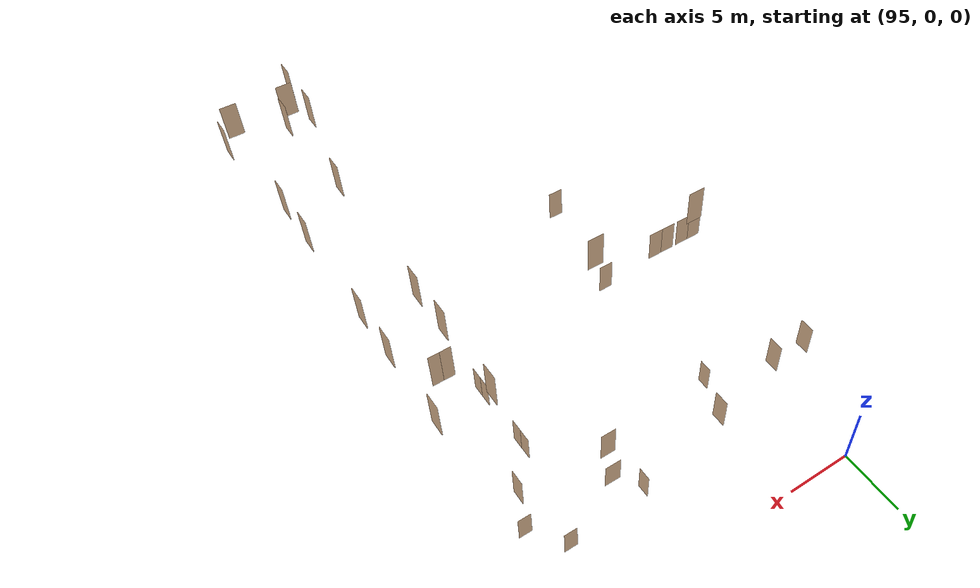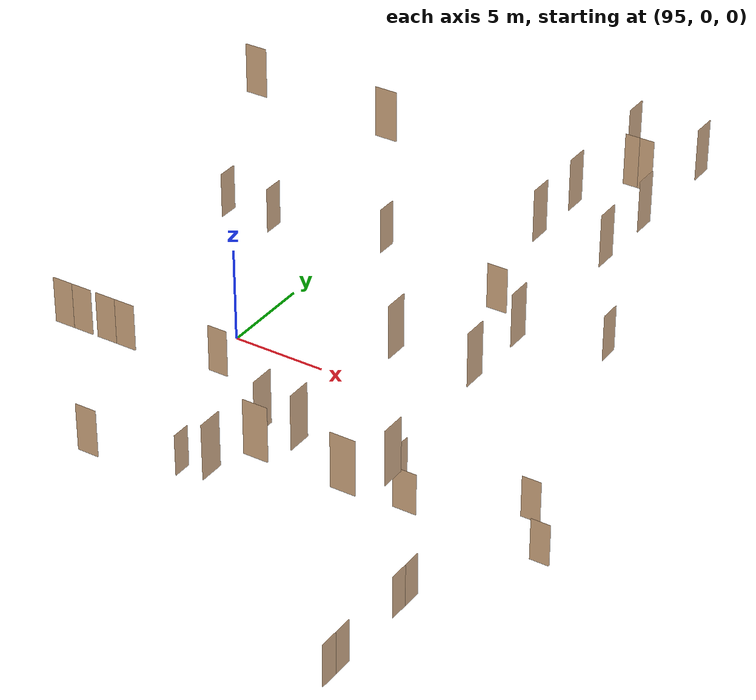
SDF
<sdf version="1.7">
 <world name="world">
  <include><uri>model://sun</uri></include>
  <model name="l1_door4">
   <pose>108.2 -5.75 0.0 0 0 1.5707963267948966</pose>
   <plugin name="door" filename="libdoor.so">
    <v_max_door>0.5</v_max_door>
    <a_max_door>0.3</a_max_door>
    <a_nom_door>0.15</a_nom_door>
    <dx_min_door>0.01</dx_min_door>
    <f_max_door>500.0</f_max_door>
    <door name="l1_door4" type="SwingDoor" left_joint_name="left_joint" right_joint_name="empty_joint"/>
   </plugin>
   <link name="left">
    <pose>0 0 1.11 0 0 0</pose>
    <visual name="left_visual">
     <geometry><box><size>0.99 0.03 2.2</size></box></geometry>
     <material><ambient>0.5 0.25 0 0.6</ambient><diffuse>0.5 0.25 0 0.6</diffuse></material>
    </visual>
    <collision name="left_collision">
     <geometry><box><size>0.99 0.03 2.2</size></box></geometry>
     <surface><contact><collide_bitmask>0x02</collide_bitmask></contact></surface>
    </collision>
    <inertial>
     <mass>50.0</mass>
     <inertia><ixx>20.17041666666667</ixx><iyy>24.250416666666673</iyy><izz>4.0875</izz></inertia>
    </inertial>
   </link>
   <joint name="left_joint" type="revolute">
    <parent>world</parent>
    <child>left</child>
    <axis><xyz>0 0 1</xyz><limit><lower>-1.57</lower><upper>0</upper></limit></axis>
    <pose>0.5 0 0 0 0 0</pose>
   </joint>
  </model>
  <model name="l1_door1">
   <pose>116.45 -7.5 0.0 0 0 3.141592653589793</pose>
   <plugin name="door" filename="libdoor.so">
    <v_max_door>0.5</v_max_door>
    <a_max_door>0.3</a_max_door>
    <a_nom_door>0.15</a_nom_door>
    <dx_min_door>0.01</dx_min_door>
    <f_max_door>500.0</f_max_door>
    <door name="l1_door1" type="SwingDoor" left_joint_name="empty_joint" right_joint_name="right_joint"/>
   </plugin>
   <link name="right">
    <pose>0 0 1.11 0 0 0</pose>
    <visual name="right_visual">
     <geometry><box><size>0.99 0.03 2.2</size></box></geometry>
     <material><ambient>0.5 0.25 0 0.6</ambient><diffuse>0.5 0.25 0 0.6</diffuse></material>
    </visual>
    <collision name="right_collision">
     <geometry><box><size>0.99 0.03 2.2</size></box></geometry>
     <surface><contact><collide_bitmask>0x02</collide_bitmask></contact></surface>
    </collision>
    <inertial>
     <mass>50.0</mass>
     <inertia><ixx>20.17041666666667</ixx><iyy>24.250416666666673</iyy><izz>4.0875</izz></inertia>
    </inertial>
   </link>
   <joint name="right_joint" type="revolute">
    <parent>world</parent>
    <child>right</child>
    <axis><xyz>0 0 1</xyz><limit><lower>0</lower><upper>1.57</upper></limit></axis>
    <pose>0.5 0 0 0 0 0</pose>
   </joint>
  </model>
  <model name="l1_door2">
   <pose>114.55000000000001 -5.0 0.0 0 0 3.141592653589793</pose>
   <plugin name="door" filename="libdoor.so">
    <v_max_door>0.5</v_max_door>
    <a_max_door>0.3</a_max_door>
    <a_nom_door>0.15</a_nom_door>
    <dx_min_door>0.01</dx_min_door>
    <f_max_door>500.0</f_max_door>
    <door name="l1_door2" type="SwingDoor" left_joint_name="empty_joint" right_joint_name="right_joint"/>
   </plugin>
   <link name="right">
    <pose>0 0 1.11 0 0 0</pose>
    <visual name="right_visual">
     <geometry><box><size>0.99 0.03 2.2</size></box></geometry>
     <material><ambient>0.5 0.25 0 0.6</ambient><diffuse>0.5 0.25 0 0.6</diffuse></material>
    </visual>
    <collision name="right_collision">
     <geometry><box><size>0.99 0.03 2.2</size></box></geometry>
     <surface><contact><collide_bitmask>0x02</collide_bitmask></contact></surface>
    </collision>
    <inertial>
     <mass>50.0</mass>
     <inertia><ixx>20.17041666666667</ixx><iyy>24.250416666666673</iyy><izz>4.0875</izz></inertia>
    </inertial>
   </link>
   <joint name="right_joint" type="revolute">
    <parent>world</parent>
    <child>right</child>
    <axis><xyz>0 0 1</xyz><limit><lower>0</lower><upper>1.57</upper></limit></axis>
    <pose>0.5 0 0 0 0 0</pose>
   </joint>
  </model>
  <model name="l1_door3">
   <pose>109.47500000000001 -7.5 0.0 0 0 0.0</pose>
   <plugin name="door" filename="libdoor.so">
    <v_max_door>0.5</v_max_door>
    <a_max_door>0.3</a_max_door>
    <a_nom_door>0.15</a_nom_door>
    <dx_min_door>0.01</dx_min_door>
    <f_max_door>500.0</f_max_door>
    <door name="l1_door3" type="SwingDoor" left_joint_name="left_joint" right_joint_name="empty_joint"/>
   </plugin>
   <link name="left">
    <pose>0 0 1.11 0 0 0</pose>
    <visual name="left_visual">
     <geometry><box><size>1.24 0.03 2.2</size></box></geometry>
     <material><ambient>0.5 0.25 0 0.6</ambient><diffuse>0.5 0.25 0 0.6</diffuse></material>
    </visual>
    <collision name="left_collision">
     <geometry><box><size>1.24 0.03 2.2</size></box></geometry>
     <surface><contact><collide_bitmask>0x02</collide_bitmask></contact></surface>
    </collision>
    <inertial>
     <mass>50.0</mass>
     <inertia><ixx>20.17041666666667</ixx><iyy>26.57333333333334</iyy><izz>6.410416666666667</izz></inertia>
    </inertial>
   </link>
   <joint name="left_joint" type="revolute">
    <parent>world</parent>
    <child>left</child>
    <axis><xyz>0 0 1</xyz><limit><lower>-1.57</lower><upper>0</upper></limit></axis>
    <pose>0.625 0 0 0 0 0</pose>
   </joint>
  </model>
  <model name="entrance_2">
   <pose>113.15 -13.25 0.0 0 0 1.5707963267948966</pose>
   <link name="left">
    <pose>-0.5 0 1.11 0 0 0</pose>
    <visual name="left_visual">
     <geometry><box><size>0.99 0.03 2.2</size></box></geometry>
     <material><ambient>0.5 0.25 0 0.6</ambient><diffuse>0.5 0.25 0 0.6</diffuse></material>
    </visual>
    <collision name="left_collision">
     <geometry><box><size>0.99 0.03 2.2</size></box></geometry>
     <surface><contact><collide_bitmask>0x02</collide_bitmask></contact></surface>
    </collision>
    <inertial>
     <mass>50.0</mass>
     <inertia><ixx>20.17041666666667</ixx><iyy>24.250416666666673</iyy><izz>4.0875</izz></inertia>
    </inertial>
   </link>
   <joint name="left_joint" type="prismatic">
    <parent>world</parent>
    <child>left</child>
    <axis><xyz>1 0 0</xyz><limit><lower>-1.0</lower><upper>0.0</upper><effort>500.0</effort></limit></axis>
   </joint>
   <link name="right">
    <pose>0.5 0 1.11 0 0 0</pose>
    <visual name="right_visual">
     <geometry><box><size>0.99 0.03 2.2</size></box></geometry>
     <material><ambient>0.5 0.25 0 0.6</ambient><diffuse>0.5 0.25 0 0.6</diffuse></material>
    </visual>
    <collision name="right_collision">
     <geometry><box><size>0.99 0.03 2.2</size></box></geometry>
     <surface><contact><collide_bitmask>0x02</collide_bitmask></contact></surface>
    </collision>
    <inertial>
     <mass>50.0</mass>
     <inertia><ixx>20.17041666666667</ixx><iyy>24.250416666666673</iyy><izz>4.0875</izz></inertia>
    </inertial>
   </link>
   <joint name="right_joint" type="prismatic">
    <parent>world</parent>
    <child>right</child>
    <axis><xyz>1 0 0</xyz><limit><lower>0.0</lower><upper>1.0</upper><effort>500.0</effort></limit></axis>
   </joint>
   <plugin name="door" filename="libdoor.so">
    <v_max_door>0.2</v_max_door>
    <a_max_door>0.2</a_max_door>
    <a_nom_door>0.08</a_nom_door>
    <dx_min_door>0.001</dx_min_door>
    <f_max_door>100.0</f_max_door>
    <door name="entrance_2" type="DoubleSlidingDoor" left_joint_name="left_joint" right_joint_name="right_joint"/>
   </plugin>
  </model>
  <model name="entrance_1">
   <pose>113.15 -18.6 0.0 0 0 1.5707963267948966</pose>
   <link name="left">
    <pose>-0.5 0 1.11 0 0 0</pose>
    <visual name="left_visual">
     <geometry><box><size>0.99 0.03 2.2</size></box></geometry>
     <material><ambient>0.5 0.25 0 0.6</ambient><diffuse>0.5 0.25 0 0.6</diffuse></material>
    </visual>
    <collision name="left_collision">
     <geometry><box><size>0.99 0.03 2.2</size></box></geometry>
     <surface><contact><collide_bitmask>0x02</collide_bitmask></contact></surface>
    </collision>
    <inertial>
     <mass>50.0</mass>
     <inertia><ixx>20.17041666666667</ixx><iyy>24.250416666666673</iyy><izz>4.0875</izz></inertia>
    </inertial>
   </link>
   <joint name="left_joint" type="prismatic">
    <parent>world</parent>
    <child>left</child>
    <axis><xyz>1 0 0</xyz><limit><lower>-1.0</lower><upper>0.0</upper><effort>500.0</effort></limit></axis>
   </joint>
   <link name="right">
    <pose>0.5 0 1.11 0 0 0</pose>
    <visual name="right_visual">
     <geometry><box><size>0.99 0.03 2.2</size></box></geometry>
     <material><ambient>0.5 0.25 0 0.6</ambient><diffuse>0.5 0.25 0 0.6</diffuse></material>
    </visual>
    <collision name="right_collision">
     <geometry><box><size>0.99 0.03 2.2</size></box></geometry>
     <surface><contact><collide_bitmask>0x02</collide_bitmask></contact></surface>
    </collision>
    <inertial>
     <mass>50.0</mass>
     <inertia><ixx>20.17041666666667</ixx><iyy>24.250416666666673</iyy><izz>4.0875</izz></inertia>
    </inertial>
   </link>
   <joint name="right_joint" type="prismatic">
    <parent>world</parent>
    <child>right</child>
    <axis><xyz>1 0 0</xyz><limit><lower>0.0</lower><upper>1.0</upper><effort>500.0</effort></limit></axis>
   </joint>
   <plugin name="door" filename="libdoor.so">
    <v_max_door>0.2</v_max_door>
    <a_max_door>0.2</a_max_door>
    <a_nom_door>0.08</a_nom_door>
    <dx_min_door>0.001</dx_min_door>
    <f_max_door>100.0</f_max_door>
    <door name="entrance_1" type="DoubleSlidingDoor" left_joint_name="left_joint" right_joint_name="right_joint"/>
   </plugin>
  </model>
  <model name="l1_door5">
   <pose>99.30000000000001 -10.4 0.0 0 0 1.5707963267948966</pose>
   <plugin name="door" filename="libdoor.so">
    <v_max_door>0.5</v_max_door>
    <a_max_door>0.3</a_max_door>
    <a_nom_door>0.15</a_nom_door>
    <dx_min_door>0.01</dx_min_door>
    <f_max_door>500.0</f_max_door>
    <door name="l1_door5" type="SwingDoor" left_joint_name="left_joint" right_joint_name="empty_joint"/>
   </plugin>
   <link name="left">
    <pose>0 0 1.11 0 0 0</pose>
    <visual name="left_visual">
     <geometry><box><size>0.99 0.03 2.2</size></box></geometry>
     <material><ambient>0.5 0.25 0 0.6</ambient><diffuse>0.5 0.25 0 0.6</diffuse></material>
    </visual>
    <collision name="left_collision">
     <geometry><box><size>0.99 0.03 2.2</size></box></geometry>
     <surface><contact><collide_bitmask>0x02</collide_bitmask></contact></surface>
    </collision>
    <inertial>
     <mass>50.0</mass>
     <inertia><ixx>20.17041666666667</ixx><iyy>24.250416666666673</iyy><izz>4.0875</izz></inertia>
    </inertial>
   </link>
   <joint name="left_joint" type="revolute">
    <parent>world</parent>
    <child>left</child>
    <axis><xyz>0 0 1</xyz><limit><lower>-1.57</lower><upper>0</upper></limit></axis>
    <pose>0.5 0 0 0 0 0</pose>
   </joint>
  </model>
  <model name="conf1_door0">
   <pose>97.8 -15.5 10.0 0 0 3.141592653589793</pose>
   <link name="right">
    <pose>-0.5 0 1.11 0 0 0</pose>
    <visual name="right_visual">
     <geometry><box><size>0.99 0.03 2.2</size></box></geometry>
     <material><ambient>0.5 0.25 0 0.6</ambient><diffuse>0.5 0.25 0 0.6</diffuse></material>
    </visual>
    <collision name="right_collision">
     <geometry><box><size>0.99 0.03 2.2</size></box></geometry>
     <surface><contact><collide_bitmask>0x02</collide_bitmask></contact></surface>
    </collision>
    <inertial>
     <mass>50.0</mass>
     <inertia><ixx>20.17041666666667</ixx><iyy>24.250416666666673</iyy><izz>4.0875</izz></inertia>
    </inertial>
   </link>
   <joint name="right_joint" type="revolute">
    <parent>world</parent>
    <child>right</child>
    <axis><xyz>0 0 1</xyz><limit><lower>0</lower><upper>1.57</upper></limit></axis>
    <pose>-0.5 0 0 0 0 0</pose>
   </joint>
   <link name="left">
    <pose>0.5 0 1.11 0 0 0</pose>
    <visual name="left_visual">
     <geometry><box><size>0.99 0.03 2.2</size></box></geometry>
     <material><ambient>0.5 0.25 0 0.6</ambient><diffuse>0.5 0.25 0 0.6</diffuse></material>
    </visual>
    <collision name="left_collision">
     <geometry><box><size>0.99 0.03 2.2</size></box></geometry>
     <surface><contact><collide_bitmask>0x02</collide_bitmask></contact></surface>
    </collision>
    <inertial>
     <mass>50.0</mass>
     <inertia><ixx>20.17041666666667</ixx><iyy>24.250416666666673</iyy><izz>4.0875</izz></inertia>
    </inertial>
   </link>
   <joint name="left_joint" type="revolute">
    <parent>world</parent>
    <child>left</child>
    <axis><xyz>0 0 1</xyz><limit><lower>-1.57</lower><upper>0</upper></limit></axis>
    <pose>0.5 0 0 0 0 0</pose>
   </joint>
   <plugin name="door" filename="libdoor.so">
    <v_max_door>0.5</v_max_door>
    <a_max_door>0.3</a_max_door>
    <a_nom_door>0.15</a_nom_door>
    <dx_min_door>0.01</dx_min_door>
    <f_max_door>500.0</f_max_door>
    <door name="conf1_door0" type="DoubleSwingDoor" left_joint_name="left_joint" right_joint_name="right_joint"/>
   </plugin>
  </model>
  <model name="conf1_door1">
   <pose>100.05 -15.5 10.0 0 0 3.141592653589793</pose>
   <link name="right">
    <pose>-0.5 0 1.11 0 0 0</pose>
    <visual name="right_visual">
     <geometry><box><size>0.99 0.03 2.2</size></box></geometry>
     <material><ambient>0.5 0.25 0 0.6</ambient><diffuse>0.5 0.25 0 0.6</diffuse></material>
    </visual>
    <collision name="right_collision">
     <geometry><box><size>0.99 0.03 2.2</size></box></geometry>
     <surface><contact><collide_bitmask>0x02</collide_bitmask></contact></surface>
    </collision>
    <inertial>
     <mass>50.0</mass>
     <inertia><ixx>20.17041666666667</ixx><iyy>24.250416666666673</iyy><izz>4.0875</izz></inertia>
    </inertial>
   </link>
   <joint name="right_joint" type="revolute">
    <parent>world</parent>
    <child>right</child>
    <axis><xyz>0 0 1</xyz><limit><lower>0</lower><upper>1.57</upper></limit></axis>
    <pose>-0.5 0 0 0 0 0</pose>
   </joint>
   <link name="left">
    <pose>0.5 0 1.11 0 0 0</pose>
    <visual name="left_visual">
     <geometry><box><size>0.99 0.03 2.2</size></box></geometry>
     <material><ambient>0.5 0.25 0 0.6</ambient><diffuse>0.5 0.25 0 0.6</diffuse></material>
    </visual>
    <collision name="left_collision">
     <geometry><box><size>0.99 0.03 2.2</size></box></geometry>
     <surface><contact><collide_bitmask>0x02</collide_bitmask></contact></surface>
    </collision>
    <inertial>
     <mass>50.0</mass>
     <inertia><ixx>20.17041666666667</ixx><iyy>24.250416666666673</iyy><izz>4.0875</izz></inertia>
    </inertial>
   </link>
   <joint name="left_joint" type="revolute">
    <parent>world</parent>
    <child>left</child>
    <axis><xyz>0 0 1</xyz><limit><lower>-1.57</lower><upper>0</upper></limit></axis>
    <pose>0.5 0 0 0 0 0</pose>
   </joint>
   <plugin name="door" filename="libdoor.so">
    <v_max_door>0.5</v_max_door>
    <a_max_door>0.3</a_max_door>
    <a_nom_door>0.15</a_nom_door>
    <dx_min_door>0.01</dx_min_door>
    <f_max_door>500.0</f_max_door>
    <door name="conf1_door1" type="DoubleSwingDoor" left_joint_name="left_joint" right_joint_name="right_joint"/>
   </plugin>
  </model>
  <model name="conf1_back0">
   <pose>97.7 -4.0 10.0 0 0 -1.5707963267948966</pose>
   <plugin name="door" filename="libdoor.so">
    <v_max_door>0.5</v_max_door>
    <a_max_door>0.3</a_max_door>
    <a_nom_door>0.15</a_nom_door>
    <dx_min_door>0.01</dx_min_door>
    <f_max_door>500.0</f_max_door>
    <door name="conf1_back0" type="SwingDoor" left_joint_name="empty_joint" right_joint_name="right_joint"/>
   </plugin>
   <link name="right">
    <pose>0 0 1.11 0 0 0</pose>
    <visual name="right_visual">
     <geometry><box><size>0.99 0.03 2.2</size></box></geometry>
     <material><ambient>0.5 0.25 0 0.6</ambient><diffuse>0.5 0.25 0 0.6</diffuse></material>
    </visual>
    <collision name="right_collision">
     <geometry><box><size>0.99 0.03 2.2</size></box></geometry>
     <surface><contact><collide_bitmask>0x02</collide_bitmask></contact></surface>
    </collision>
    <inertial>
     <mass>50.0</mass>
     <inertia><ixx>20.17041666666667</ixx><iyy>24.250416666666673</iyy><izz>4.0875</izz></inertia>
    </inertial>
   </link>
   <joint name="right_joint" type="revolute">
    <parent>world</parent>
    <child>right</child>
    <axis><xyz>0 0 1</xyz><limit><lower>0</lower><upper>1.57</upper></limit></axis>
    <pose>0.5 0 0 0 0 0</pose>
   </joint>
  </model>
  <model name="conf1_back1">
   <pose>100.2 -4.0 10.0 0 0 -1.5707963267948966</pose>
   <plugin name="door" filename="libdoor.so">
    <v_max_door>0.5</v_max_door>
    <a_max_door>0.3</a_max_door>
    <a_nom_door>0.15</a_nom_door>
    <dx_min_door>0.01</dx_min_door>
    <f_max_door>500.0</f_max_door>
    <door name="conf1_back1" type="SwingDoor" left_joint_name="empty_joint" right_joint_name="right_joint"/>
   </plugin>
   <link name="right">
    <pose>0 0 1.11 0 0 0</pose>
    <visual name="right_visual">
     <geometry><box><size>0.99 0.03 2.2</size></box></geometry>
     <material><ambient>0.5 0.25 0 0.6</ambient><diffuse>0.5 0.25 0 0.6</diffuse></material>
    </visual>
    <collision name="right_collision">
     <geometry><box><size>0.99 0.03 2.2</size></box></geometry>
     <surface><contact><collide_bitmask>0x02</collide_bitmask></contact></surface>
    </collision>
    <inertial>
     <mass>50.0</mass>
     <inertia><ixx>20.17041666666667</ixx><iyy>24.250416666666673</iyy><izz>4.0875</izz></inertia>
    </inertial>
   </link>
   <joint name="right_joint" type="revolute">
    <parent>world</parent>
    <child>right</child>
    <axis><xyz>0 0 1</xyz><limit><lower>0</lower><upper>1.57</upper></limit></axis>
    <pose>0.5 0 0 0 0 0</pose>
   </joint>
  </model>
  <model name="conf_door9">
   <pose>105.44987499999999 -2.75 10.0 0 0 1.5705463268000968</pose>
   <plugin name="door" filename="libdoor.so">
    <v_max_door>0.5</v_max_door>
    <a_max_door>0.3</a_max_door>
    <a_nom_door>0.15</a_nom_door>
    <dx_min_door>0.01</dx_min_door>
    <f_max_door>500.0</f_max_door>
    <door name="conf_door9" type="SwingDoor" left_joint_name="empty_joint" right_joint_name="right_joint"/>
   </plugin>
   <link name="right">
    <pose>0 0 1.11 0 0 0</pose>
    <visual name="right_visual">
     <geometry><box><size>0.9900000312499995 0.03 2.2</size></box></geometry>
     <material><ambient>0.5 0.25 0 0.6</ambient><diffuse>0.5 0.25 0 0.6</diffuse></material>
    </visual>
    <collision name="right_collision">
     <geometry><box><size>0.9900000312499995 0.03 2.2</size></box></geometry>
     <surface><contact><collide_bitmask>0x02</collide_bitmask></contact></surface>
    </collision>
    <inertial>
     <mass>50.0</mass>
     <inertia><ixx>20.17041666666667</ixx><iyy>24.25041692447917</iyy><izz>4.0875002578125</izz></inertia>
    </inertial>
   </link>
   <joint name="right_joint" type="revolute">
    <parent>world</parent>
    <child>right</child>
    <axis><xyz>0 0 1</xyz><limit><lower>0</lower><upper>1.57</upper></limit></axis>
    <pose>0.5000000156249997 0 0 0 0 0</pose>
   </joint>
  </model>
  <model name="conf_door8">
   <pose>104.975 -15.0 10.0 0 0 3.141592653589793</pose>
   <plugin name="door" filename="libdoor.so">
    <v_max_door>0.5</v_max_door>
    <a_max_door>0.3</a_max_door>
    <a_nom_door>0.15</a_nom_door>
    <dx_min_door>0.01</dx_min_door>
    <f_max_door>500.0</f_max_door>
    <door name="conf_door8" type="SwingDoor" left_joint_name="empty_joint" right_joint_name="right_joint"/>
   </plugin>
   <link name="right">
    <pose>0 0 1.11 0 0 0</pose>
    <visual name="right_visual">
     <geometry><box><size>0.9400000000000028 0.03 2.2</size></box></geometry>
     <material><ambient>0.5 0.25 0 0.6</ambient><diffuse>0.5 0.25 0 0.6</diffuse></material>
    </visual>
    <collision name="right_collision">
     <geometry><box><size>0.9400000000000028 0.03 2.2</size></box></geometry>
     <surface><contact><collide_bitmask>0x02</collide_bitmask></contact></surface>
    </collision>
    <inertial>
     <mass>50.0</mass>
     <inertia><ixx>20.17041666666667</ixx><iyy>23.84833333333336</iyy><izz>3.6854166666666894</izz></inertia>
    </inertial>
   </link>
   <joint name="right_joint" type="revolute">
    <parent>world</parent>
    <child>right</child>
    <axis><xyz>0 0 1</xyz><limit><lower>0</lower><upper>1.57</upper></limit></axis>
    <pose>0.4750000000000014 0 0 0 0 0</pose>
   </joint>
  </model>
  <model name="conf_meeting1_door1">
   <pose>103.95 -22.5 10.0 0 0 3.141592653589793</pose>
   <plugin name="door" filename="libdoor.so">
    <v_max_door>0.5</v_max_door>
    <a_max_door>0.3</a_max_door>
    <a_nom_door>0.15</a_nom_door>
    <dx_min_door>0.01</dx_min_door>
    <f_max_door>500.0</f_max_door>
    <door name="conf_meeting1_door1" type="SwingDoor" left_joint_name="empty_joint" right_joint_name="right_joint"/>
   </plugin>
   <link name="right">
    <pose>0 0 1.11 0 0 0</pose>
    <visual name="right_visual">
     <geometry><box><size>0.99 0.03 2.2</size></box></geometry>
     <material><ambient>0.5 0.25 0 0.6</ambient><diffuse>0.5 0.25 0 0.6</diffuse></material>
    </visual>
    <collision name="right_collision">
     <geometry><box><size>0.99 0.03 2.2</size></box></geometry>
     <surface><contact><collide_bitmask>0x02</collide_bitmask></contact></surface>
    </collision>
    <inertial>
     <mass>50.0</mass>
     <inertia><ixx>20.17041666666667</ixx><iyy>24.250416666666673</iyy><izz>4.0875</izz></inertia>
    </inertial>
   </link>
   <joint name="right_joint" type="revolute">
    <parent>world</parent>
    <child>right</child>
    <axis><xyz>0 0 1</xyz><limit><lower>0</lower><upper>1.57</upper></limit></axis>
    <pose>0.5 0 0 0 0 0</pose>
   </joint>
  </model>
  <model name="conf_door10">
   <pose>112.2 -4.5 10.0 0 0 0.0</pose>
   <plugin name="door" filename="libdoor.so">
    <v_max_door>0.5</v_max_door>
    <a_max_door>0.3</a_max_door>
    <a_nom_door>0.15</a_nom_door>
    <dx_min_door>0.01</dx_min_door>
    <f_max_door>500.0</f_max_door>
    <door name="conf_door10" type="SwingDoor" left_joint_name="left_joint" right_joint_name="empty_joint"/>
   </plugin>
   <link name="left">
    <pose>0 0 1.11 0 0 0</pose>
    <visual name="left_visual">
     <geometry><box><size>0.99 0.03 2.2</size></box></geometry>
     <material><ambient>0.5 0.25 0 0.6</ambient><diffuse>0.5 0.25 0 0.6</diffuse></material>
    </visual>
    <collision name="left_collision">
     <geometry><box><size>0.99 0.03 2.2</size></box></geometry>
     <surface><contact><collide_bitmask>0x02</collide_bitmask></contact></surface>
    </collision>
    <inertial>
     <mass>50.0</mass>
     <inertia><ixx>20.17041666666667</ixx><iyy>24.250416666666673</iyy><izz>4.0875</izz></inertia>
    </inertial>
   </link>
   <joint name="left_joint" type="revolute">
    <parent>world</parent>
    <child>left</child>
    <axis><xyz>0 0 1</xyz><limit><lower>-1.57</lower><upper>0</upper></limit></axis>
    <pose>0.5 0 0 0 0 0</pose>
   </joint>
  </model>
  <model name="conf_door11">
   <pose>117.95 -5.0 10.0 0 0 -1.5707963267948966</pose>
   <plugin name="door" filename="libdoor.so">
    <v_max_door>0.5</v_max_door>
    <a_max_door>0.3</a_max_door>
    <a_nom_door>0.15</a_nom_door>
    <dx_min_door>0.01</dx_min_door>
    <f_max_door>500.0</f_max_door>
    <door name="conf_door11" type="SwingDoor" left_joint_name="left_joint" right_joint_name="empty_joint"/>
   </plugin>
   <link name="left">
    <pose>0 0 1.11 0 0 0</pose>
    <visual name="left_visual">
     <geometry><box><size>0.99 0.03 2.2</size></box></geometry>
     <material><ambient>0.5 0.25 0 0.6</ambient><diffuse>0.5 0.25 0 0.6</diffuse></material>
    </visual>
    <collision name="left_collision">
     <geometry><box><size>0.99 0.03 2.2</size></box></geometry>
     <surface><contact><collide_bitmask>0x02</collide_bitmask></contact></surface>
    </collision>
    <inertial>
     <mass>50.0</mass>
     <inertia><ixx>20.17041666666667</ixx><iyy>24.250416666666673</iyy><izz>4.0875</izz></inertia>
    </inertial>
   </link>
   <joint name="left_joint" type="revolute">
    <parent>world</parent>
    <child>left</child>
    <axis><xyz>0 0 1</xyz><limit><lower>-1.57</lower><upper>0</upper></limit></axis>
    <pose>0.5 0 0 0 0 0</pose>
   </joint>
  </model>
  <model name="room28_door">
   <pose>103.2 -9.25 20.0 0 0 3.141592653589793</pose>
   <plugin name="door" filename="libdoor.so">
    <v_max_door>0.5</v_max_door>
    <a_max_door>0.3</a_max_door>
    <a_nom_door>0.15</a_nom_door>
    <dx_min_door>0.01</dx_min_door>
    <f_max_door>500.0</f_max_door>
    <door name="room28_door" type="SwingDoor" left_joint_name="left_joint" right_joint_name="empty_joint"/>
   </plugin>
   <link name="left">
    <pose>0 0 1.11 0 0 0</pose>
    <visual name="left_visual">
     <geometry><box><size>0.99 0.03 2.2</size></box></geometry>
     <material><ambient>0.5 0.25 0 0.6</ambient><diffuse>0.5 0.25 0 0.6</diffuse></material>
    </visual>
    <collision name="left_collision">
     <geometry><box><size>0.99 0.03 2.2</size></box></geometry>
     <surface><contact><collide_bitmask>0x02</collide_bitmask></contact></surface>
    </collision>
    <inertial>
     <mass>50.0</mass>
     <inertia><ixx>20.17041666666667</ixx><iyy>24.250416666666673</iyy><izz>4.0875</izz></inertia>
    </inertial>
   </link>
   <joint name="left_joint" type="revolute">
    <parent>world</parent>
    <child>left</child>
    <axis><xyz>0 0 1</xyz><limit><lower>-1.57</lower><upper>0</upper></limit></axis>
    <pose>0.5 0 0 0 0 0</pose>
   </joint>
  </model>
  <model name="room29_door">
   <pose>109.7 -9.5 20.0 0 0 0.0</pose>
   <plugin name="door" filename="libdoor.so">
    <v_max_door>0.5</v_max_door>
    <a_max_door>0.3</a_max_door>
    <a_nom_door>0.15</a_nom_door>
    <dx_min_door>0.01</dx_min_door>
    <f_max_door>500.0</f_max_door>
    <door name="room29_door" type="SwingDoor" left_joint_name="empty_joint" right_joint_name="right_joint"/>
   </plugin>
   <link name="right">
    <pose>0 0 1.11 0 0 0</pose>
    <visual name="right_visual">
     <geometry><box><size>0.99 0.03 2.2</size></box></geometry>
     <material><ambient>0.5 0.25 0 0.6</ambient><diffuse>0.5 0.25 0 0.6</diffuse></material>
    </visual>
    <collision name="right_collision">
     <geometry><box><size>0.99 0.03 2.2</size></box></geometry>
     <surface><contact><collide_bitmask>0x02</collide_bitmask></contact></surface>
    </collision>
    <inertial>
     <mass>50.0</mass>
     <inertia><ixx>20.17041666666667</ixx><iyy>24.250416666666673</iyy><izz>4.0875</izz></inertia>
    </inertial>
   </link>
   <joint name="right_joint" type="revolute">
    <parent>world</parent>
    <child>right</child>
    <axis><xyz>0 0 1</xyz><limit><lower>0</lower><upper>1.57</upper></limit></axis>
    <pose>0.5 0 0 0 0 0</pose>
   </joint>
  </model>
  <model name="stair2_door">
   <pose>118.7 -10.0 20.0 0 0 1.5707963267948966</pose>
   <plugin name="door" filename="libdoor.so">
    <v_max_door>0.5</v_max_door>
    <a_max_door>0.3</a_max_door>
    <a_nom_door>0.15</a_nom_door>
    <dx_min_door>0.01</dx_min_door>
    <f_max_door>500.0</f_max_door>
    <door name="stair2_door" type="SwingDoor" left_joint_name="left_joint" right_joint_name="empty_joint"/>
   </plugin>
   <link name="left">
    <pose>0 0 1.11 0 0 0</pose>
    <visual name="left_visual">
     <geometry><box><size>0.99 0.03 2.2</size></box></geometry>
     <material><ambient>0.5 0.25 0 0.6</ambient><diffuse>0.5 0.25 0 0.6</diffuse></material>
    </visual>
    <collision name="left_collision">
     <geometry><box><size>0.99 0.03 2.2</size></box></geometry>
     <surface><contact><collide_bitmask>0x02</collide_bitmask></contact></surface>
    </collision>
    <inertial>
     <mass>50.0</mass>
     <inertia><ixx>20.17041666666667</ixx><iyy>24.250416666666673</iyy><izz>4.0875</izz></inertia>
    </inertial>
   </link>
   <joint name="left_joint" type="revolute">
    <parent>world</parent>
    <child>left</child>
    <axis><xyz>0 0 1</xyz><limit><lower>-1.57</lower><upper>0</upper></limit></axis>
    <pose>0.5 0 0 0 0 0</pose>
   </joint>
  </model>
  <model name="door9">
   <pose>118.7 -12.75 20.0 0 0 -1.5707963267948966</pose>
   <plugin name="door" filename="libdoor.so">
    <v_max_door>0.5</v_max_door>
    <a_max_door>0.3</a_max_door>
    <a_nom_door>0.15</a_nom_door>
    <dx_min_door>0.01</dx_min_door>
    <f_max_door>500.0</f_max_door>
    <door name="door9" type="SwingDoor" left_joint_name="left_joint" right_joint_name="empty_joint"/>
   </plugin>
   <link name="left">
    <pose>0 0 1.11 0 0 0</pose>
    <visual name="left_visual">
     <geometry><box><size>0.99 0.03 2.2</size></box></geometry>
     <material><ambient>0.5 0.25 0 0.6</ambient><diffuse>0.5 0.25 0 0.6</diffuse></material>
    </visual>
    <collision name="left_collision">
     <geometry><box><size>0.99 0.03 2.2</size></box></geometry>
     <surface><contact><collide_bitmask>0x02</collide_bitmask></contact></surface>
    </collision>
    <inertial>
     <mass>50.0</mass>
     <inertia><ixx>20.17041666666667</ixx><iyy>24.250416666666673</iyy><izz>4.0875</izz></inertia>
    </inertial>
   </link>
   <joint name="left_joint" type="revolute">
    <parent>world</parent>
    <child>left</child>
    <axis><xyz>0 0 1</xyz><limit><lower>-1.57</lower><upper>0</upper></limit></axis>
    <pose>0.5 0 0 0 0 0</pose>
   </joint>
  </model>
  <model name="room30_door">
   <pose>118.7 -5.25 20.0 0 0 -1.5707963267948966</pose>
   <plugin name="door" filename="libdoor.so">
    <v_max_door>0.5</v_max_door>
    <a_max_door>0.3</a_max_door>
    <a_nom_door>0.15</a_nom_door>
    <dx_min_door>0.01</dx_min_door>
    <f_max_door>500.0</f_max_door>
    <door name="room30_door" type="SwingDoor" left_joint_name="empty_joint" right_joint_name="right_joint"/>
   </plugin>
   <link name="right">
    <pose>0 0 1.11 0 0 0</pose>
    <visual name="right_visual">
     <geometry><box><size>0.99 0.03 2.2</size></box></geometry>
     <material><ambient>0.5 0.25 0 0.6</ambient><diffuse>0.5 0.25 0 0.6</diffuse></material>
    </visual>
    <collision name="right_collision">
     <geometry><box><size>0.99 0.03 2.2</size></box></geometry>
     <surface><contact><collide_bitmask>0x02</collide_bitmask></contact></surface>
    </collision>
    <inertial>
     <mass>50.0</mass>
     <inertia><ixx>20.17041666666667</ixx><iyy>24.250416666666673</iyy><izz>4.0875</izz></inertia>
    </inertial>
   </link>
   <joint name="right_joint" type="revolute">
    <parent>world</parent>
    <child>right</child>
    <axis><xyz>0 0 1</xyz><limit><lower>0</lower><upper>1.57</upper></limit></axis>
    <pose>0.5 0 0 0 0 0</pose>
   </joint>
  </model>
  <model name="room31_door">
   <pose>121.7 -5.25 20.0 0 0 -1.5707963267948966</pose>
   <plugin name="door" filename="libdoor.so">
    <v_max_door>0.5</v_max_door>
    <a_max_door>0.3</a_max_door>
    <a_nom_door>0.15</a_nom_door>
    <dx_min_door>0.01</dx_min_door>
    <f_max_door>500.0</f_max_door>
    <door name="room31_door" type="SwingDoor" left_joint_name="left_joint" right_joint_name="empty_joint"/>
   </plugin>
   <link name="left">
    <pose>0 0 1.11 0 0 0</pose>
    <visual name="left_visual">
     <geometry><box><size>0.99 0.03 2.2</size></box></geometry>
     <material><ambient>0.5 0.25 0 0.6</ambient><diffuse>0.5 0.25 0 0.6</diffuse></material>
    </visual>
    <collision name="left_collision">
     <geometry><box><size>0.99 0.03 2.2</size></box></geometry>
     <surface><contact><collide_bitmask>0x02</collide_bitmask></contact></surface>
    </collision>
    <inertial>
     <mass>50.0</mass>
     <inertia><ixx>20.17041666666667</ixx><iyy>24.250416666666673</iyy><izz>4.0875</izz></inertia>
    </inertial>
   </link>
   <joint name="left_joint" type="revolute">
    <parent>world</parent>
    <child>left</child>
    <axis><xyz>0 0 1</xyz><limit><lower>-1.57</lower><upper>0</upper></limit></axis>
    <pose>0.5 0 0 0 0 0</pose>
   </joint>
  </model>
  <model name="door8">
   <pose>120.075 -7.5 20.0 0 0 3.141592653589793</pose>
   <link name="right">
    <pose>0.3125 0 1.11 0 0 0</pose>
    <visual name="right_visual">
     <geometry><box><size>0.615 0.03 2.2</size></box></geometry>
     <material><ambient>0.5 0.25 0 0.6</ambient><diffuse>0.5 0.25 0 0.6</diffuse></material>
    </visual>
    <collision name="right_collision">
     <geometry><box><size>0.615 0.03 2.2</size></box></geometry>
     <surface><contact><collide_bitmask>0x02</collide_bitmask></contact></surface>
    </collision>
    <inertial>
     <mass>50.0</mass>
     <inertia><ixx>20.17041666666667</ixx><iyy>21.74260416666667</iyy><izz>1.5796875000000001</izz></inertia>
    </inertial>
   </link>
   <joint name="right_joint" type="revolute">
    <parent>world</parent>
    <child>right</child>
    <axis><xyz>0 0 1</xyz><limit><lower>0</lower><upper>1.57</upper></limit></axis>
    <pose>0.3125 0 0 0 0 0</pose>
   </joint>
   <link name="left">
    <pose>-0.3125 0 1.11 0 0 0</pose>
    <visual name="left_visual">
     <geometry><box><size>0.615 0.03 2.2</size></box></geometry>
     <material><ambient>0.5 0.25 0 0.6</ambient><diffuse>0.5 0.25 0 0.6</diffuse></material>
    </visual>
    <collision name="left_collision">
     <geometry><box><size>0.615 0.03 2.2</size></box></geometry>
     <surface><contact><collide_bitmask>0x02</collide_bitmask></contact></surface>
    </collision>
    <inertial>
     <mass>50.0</mass>
     <inertia><ixx>20.17041666666667</ixx><iyy>21.74260416666667</iyy><izz>1.5796875000000001</izz></inertia>
    </inertial>
   </link>
   <joint name="left_joint" type="revolute">
    <parent>world</parent>
    <child>left</child>
    <axis><xyz>0 0 1</xyz><limit><lower>-1.57</lower><upper>0</upper></limit></axis>
    <pose>-0.3125 0 0 0 0 0</pose>
   </joint>
   <plugin name="door" filename="libdoor.so">
    <v_max_door>0.5</v_max_door>
    <a_max_door>0.3</a_max_door>
    <a_nom_door>0.15</a_nom_door>
    <dx_min_door>0.01</dx_min_door>
    <f_max_door>500.0</f_max_door>
    <door name="door8" type="DoubleSwingDoor" left_joint_name="left_joint" right_joint_name="right_joint"/>
   </plugin>
  </model>
  <model name="room32_door">
   <pose>121.7 -10.0 20.0 0 0 -1.5707963267948966</pose>
   <plugin name="door" filename="libdoor.so">
    <v_max_door>0.5</v_max_door>
    <a_max_door>0.3</a_max_door>
    <a_nom_door>0.15</a_nom_door>
    <dx_min_door>0.01</dx_min_door>
    <f_max_door>500.0</f_max_door>
    <door name="room32_door" type="SwingDoor" left_joint_name="left_joint" right_joint_name="empty_joint"/>
   </plugin>
   <link name="left">
    <pose>0 0 1.11 0 0 0</pose>
    <visual name="left_visual">
     <geometry><box><size>0.99 0.03 2.2</size></box></geometry>
     <material><ambient>0.5 0.25 0 0.6</ambient><diffuse>0.5 0.25 0 0.6</diffuse></material>
    </visual>
    <collision name="left_collision">
     <geometry><box><size>0.99 0.03 2.2</size></box></geometry>
     <surface><contact><collide_bitmask>0x02</collide_bitmask></contact></surface>
    </collision>
    <inertial>
     <mass>50.0</mass>
     <inertia><ixx>20.17041666666667</ixx><iyy>24.250416666666673</iyy><izz>4.0875</izz></inertia>
    </inertial>
   </link>
   <joint name="left_joint" type="revolute">
    <parent>world</parent>
    <child>left</child>
    <axis><xyz>0 0 1</xyz><limit><lower>-1.57</lower><upper>0</upper></limit></axis>
    <pose>0.5 0 0 0 0 0</pose>
   </joint>
  </model>
  <model name="room33_door">
   <pose>121.7 -13.0 20.0 0 0 1.5707963267948966</pose>
   <plugin name="door" filename="libdoor.so">
    <v_max_door>0.5</v_max_door>
    <a_max_door>0.3</a_max_door>
    <a_nom_door>0.15</a_nom_door>
    <dx_min_door>0.01</dx_min_door>
    <f_max_door>500.0</f_max_door>
    <door name="room33_door" type="SwingDoor" left_joint_name="empty_joint" right_joint_name="right_joint"/>
   </plugin>
   <link name="right">
    <pose>0 0 1.11 0 0 0</pose>
    <visual name="right_visual">
     <geometry><box><size>0.99 0.03 2.2</size></box></geometry>
     <material><ambient>0.5 0.25 0 0.6</ambient><diffuse>0.5 0.25 0 0.6</diffuse></material>
    </visual>
    <collision name="right_collision">
     <geometry><box><size>0.99 0.03 2.2</size></box></geometry>
     <surface><contact><collide_bitmask>0x02</collide_bitmask></contact></surface>
    </collision>
    <inertial>
     <mass>50.0</mass>
     <inertia><ixx>20.17041666666667</ixx><iyy>24.250416666666673</iyy><izz>4.0875</izz></inertia>
    </inertial>
   </link>
   <joint name="right_joint" type="revolute">
    <parent>world</parent>
    <child>right</child>
    <axis><xyz>0 0 1</xyz><limit><lower>0</lower><upper>1.57</upper></limit></axis>
    <pose>0.5 0 0 0 0 0</pose>
   </joint>
  </model>
  <model name="room34_door">
   <pose>121.7 -19.5 20.0 0 0 -1.5707963267948966</pose>
   <plugin name="door" filename="libdoor.so">
    <v_max_door>0.5</v_max_door>
    <a_max_door>0.3</a_max_door>
    <a_nom_door>0.15</a_nom_door>
    <dx_min_door>0.01</dx_min_door>
    <f_max_door>500.0</f_max_door>
    <door name="room34_door" type="SwingDoor" left_joint_name="left_joint" right_joint_name="empty_joint"/>
   </plugin>
   <link name="left">
    <pose>0 0 1.11 0 0 0</pose>
    <visual name="left_visual">
     <geometry><box><size>0.99 0.03 2.2</size></box></geometry>
     <material><ambient>0.5 0.25 0 0.6</ambient><diffuse>0.5 0.25 0 0.6</diffuse></material>
    </visual>
    <collision name="left_collision">
     <geometry><box><size>0.99 0.03 2.2</size></box></geometry>
     <surface><contact><collide_bitmask>0x02</collide_bitmask></contact></surface>
    </collision>
    <inertial>
     <mass>50.0</mass>
     <inertia><ixx>20.17041666666667</ixx><iyy>24.250416666666673</iyy><izz>4.0875</izz></inertia>
    </inertial>
   </link>
   <joint name="left_joint" type="revolute">
    <parent>world</parent>
    <child>left</child>
    <axis><xyz>0 0 1</xyz><limit><lower>-1.57</lower><upper>0</upper></limit></axis>
    <pose>0.5 0 0 0 0 0</pose>
   </joint>
  </model>
  <model name="room35_door">
   <pose>121.7 -22.5 20.0 0 0 1.5707963267948966</pose>
   <plugin name="door" filename="libdoor.so">
    <v_max_door>0.5</v_max_door>
    <a_max_door>0.3</a_max_door>
    <a_nom_door>0.15</a_nom_door>
    <dx_min_door>0.01</dx_min_door>
    <f_max_door>500.0</f_max_door>
    <door name="room35_door" type="SwingDoor" left_joint_name="empty_joint" right_joint_name="right_joint"/>
   </plugin>
   <link name="right">
    <pose>0 0 1.11 0 0 0</pose>
    <visual name="right_visual">
     <geometry><box><size>0.99 0.03 2.2</size></box></geometry>
     <material><ambient>0.5 0.25 0 0.6</ambient><diffuse>0.5 0.25 0 0.6</diffuse></material>
    </visual>
    <collision name="right_collision">
     <geometry><box><size>0.99 0.03 2.2</size></box></geometry>
     <surface><contact><collide_bitmask>0x02</collide_bitmask></contact></surface>
    </collision>
    <inertial>
     <mass>50.0</mass>
     <inertia><ixx>20.17041666666667</ixx><iyy>24.250416666666673</iyy><izz>4.0875</izz></inertia>
    </inertial>
   </link>
   <joint name="right_joint" type="revolute">
    <parent>world</parent>
    <child>right</child>
    <axis><xyz>0 0 1</xyz><limit><lower>0</lower><upper>1.57</upper></limit></axis>
    <pose>0.5 0 0 0 0 0</pose>
   </joint>
  </model>
  <model name="room40_door">
   <pose>118.45 -22.5 20.0 0 0 1.5707963267948966</pose>
   <plugin name="door" filename="libdoor.so">
    <v_max_door>0.5</v_max_door>
    <a_max_door>0.3</a_max_door>
    <a_nom_door>0.15</a_nom_door>
    <dx_min_door>0.01</dx_min_door>
    <f_max_door>500.0</f_max_door>
    <door name="room40_door" type="SwingDoor" left_joint_name="left_joint" right_joint_name="empty_joint"/>
   </plugin>
   <link name="left">
    <pose>0 0 1.11 0 0 0</pose>
    <visual name="left_visual">
     <geometry><box><size>0.99 0.03 2.2</size></box></geometry>
     <material><ambient>0.5 0.25 0 0.6</ambient><diffuse>0.5 0.25 0 0.6</diffuse></material>
    </visual>
    <collision name="left_collision">
     <geometry><box><size>0.99 0.03 2.2</size></box></geometry>
     <surface><contact><collide_bitmask>0x02</collide_bitmask></contact></surface>
    </collision>
    <inertial>
     <mass>50.0</mass>
     <inertia><ixx>20.17041666666667</ixx><iyy>24.250416666666673</iyy><izz>4.0875</izz></inertia>
    </inertial>
   </link>
   <joint name="left_joint" type="revolute">
    <parent>world</parent>
    <child>left</child>
    <axis><xyz>0 0 1</xyz><limit><lower>-1.57</lower><upper>0</upper></limit></axis>
    <pose>0.5 0 0 0 0 0</pose>
   </joint>
  </model>
  <model name="room36_door">
   <pose>122.45 -29.0 20.0 0 0 -1.5707963267948966</pose>
   <plugin name="door" filename="libdoor.so">
    <v_max_door>0.5</v_max_door>
    <a_max_door>0.3</a_max_door>
    <a_nom_door>0.15</a_nom_door>
    <dx_min_door>0.01</dx_min_door>
    <f_max_door>500.0</f_max_door>
    <door name="room36_door" type="SwingDoor" left_joint_name="left_joint" right_joint_name="empty_joint"/>
   </plugin>
   <link name="left">
    <pose>0 0 1.11 0 0 0</pose>
    <visual name="left_visual">
     <geometry><box><size>0.99 0.03 2.2</size></box></geometry>
     <material><ambient>0.5 0.25 0 0.6</ambient><diffuse>0.5 0.25 0 0.6</diffuse></material>
    </visual>
    <collision name="left_collision">
     <geometry><box><size>0.99 0.03 2.2</size></box></geometry>
     <surface><contact><collide_bitmask>0x02</collide_bitmask></contact></surface>
    </collision>
    <inertial>
     <mass>50.0</mass>
     <inertia><ixx>20.17041666666667</ixx><iyy>24.250416666666673</iyy><izz>4.0875</izz></inertia>
    </inertial>
   </link>
   <joint name="left_joint" type="revolute">
    <parent>world</parent>
    <child>left</child>
    <axis><xyz>0 0 1</xyz><limit><lower>-1.57</lower><upper>0</upper></limit></axis>
    <pose>0.5 0 0 0 0 0</pose>
   </joint>
  </model>
  <model name="door10">
   <pose>118.7 -29.0 20.0 0 0 1.5707963267948966</pose>
   <plugin name="door" filename="libdoor.so">
    <v_max_door>0.5</v_max_door>
    <a_max_door>0.3</a_max_door>
    <a_nom_door>0.15</a_nom_door>
    <dx_min_door>0.01</dx_min_door>
    <f_max_door>500.0</f_max_door>
    <door name="door10" type="SwingDoor" left_joint_name="left_joint" right_joint_name="empty_joint"/>
   </plugin>
   <link name="left">
    <pose>0 0 1.11 0 0 0</pose>
    <visual name="left_visual">
     <geometry><box><size>0.99 0.03 2.2</size></box></geometry>
     <material><ambient>0.5 0.25 0 0.6</ambient><diffuse>0.5 0.25 0 0.6</diffuse></material>
    </visual>
    <collision name="left_collision">
     <geometry><box><size>0.99 0.03 2.2</size></box></geometry>
     <surface><contact><collide_bitmask>0x02</collide_bitmask></contact></surface>
    </collision>
    <inertial>
     <mass>50.0</mass>
     <inertia><ixx>20.17041666666667</ixx><iyy>24.250416666666673</iyy><izz>4.0875</izz></inertia>
    </inertial>
   </link>
   <joint name="left_joint" type="revolute">
    <parent>world</parent>
    <child>left</child>
    <axis><xyz>0 0 1</xyz><limit><lower>-1.57</lower><upper>0</upper></limit></axis>
    <pose>0.5 0 0 0 0 0</pose>
   </joint>
  </model>
  <model name="room39_door">
   <pose>117.2 -29.0 20.0 0 0 -1.5707963267948966</pose>
   <plugin name="door" filename="libdoor.so">
    <v_max_door>0.5</v_max_door>
    <a_max_door>0.3</a_max_door>
    <a_nom_door>0.15</a_nom_door>
    <dx_min_door>0.01</dx_min_door>
    <f_max_door>500.0</f_max_door>
    <door name="room39_door" type="SwingDoor" left_joint_name="empty_joint" right_joint_name="right_joint"/>
   </plugin>
   <link name="right">
    <pose>0 0 1.11 0 0 0</pose>
    <visual name="right_visual">
     <geometry><box><size>0.99 0.03 2.2</size></box></geometry>
     <material><ambient>0.5 0.25 0 0.6</ambient><diffuse>0.5 0.25 0 0.6</diffuse></material>
    </visual>
    <collision name="right_collision">
     <geometry><box><size>0.99 0.03 2.2</size></box></geometry>
     <surface><contact><collide_bitmask>0x02</collide_bitmask></contact></surface>
    </collision>
    <inertial>
     <mass>50.0</mass>
     <inertia><ixx>20.17041666666667</ixx><iyy>24.250416666666673</iyy><izz>4.0875</izz></inertia>
    </inertial>
   </link>
   <joint name="right_joint" type="revolute">
    <parent>world</parent>
    <child>right</child>
    <axis><xyz>0 0 1</xyz><limit><lower>0</lower><upper>1.57</upper></limit></axis>
    <pose>0.5 0 0 0 0 0</pose>
   </joint>
  </model>
  <model name="room37_door">
   <pose>121.45 -30.5 20.0 0 0 3.141592653589793</pose>
   <plugin name="door" filename="libdoor.so">
    <v_max_door>0.5</v_max_door>
    <a_max_door>0.3</a_max_door>
    <a_nom_door>0.15</a_nom_door>
    <dx_min_door>0.01</dx_min_door>
    <f_max_door>500.0</f_max_door>
    <door name="room37_door" type="SwingDoor" left_joint_name="left_joint" right_joint_name="empty_joint"/>
   </plugin>
   <link name="left">
    <pose>0 0 1.11 0 0 0</pose>
    <visual name="left_visual">
     <geometry><box><size>0.99 0.03 2.2</size></box></geometry>
     <material><ambient>0.5 0.25 0 0.6</ambient><diffuse>0.5 0.25 0 0.6</diffuse></material>
    </visual>
    <collision name="left_collision">
     <geometry><box><size>0.99 0.03 2.2</size></box></geometry>
     <surface><contact><collide_bitmask>0x02</collide_bitmask></contact></surface>
    </collision>
    <inertial>
     <mass>50.0</mass>
     <inertia><ixx>20.17041666666667</ixx><iyy>24.250416666666673</iyy><izz>4.0875</izz></inertia>
    </inertial>
   </link>
   <joint name="left_joint" type="revolute">
    <parent>world</parent>
    <child>left</child>
    <axis><xyz>0 0 1</xyz><limit><lower>-1.57</lower><upper>0</upper></limit></axis>
    <pose>0.5 0 0 0 0 0</pose>
   </joint>
  </model>
  <model name="room38_door">
   <pose>117.95 -30.5 20.0 0 0 3.141592653589793</pose>
   <plugin name="door" filename="libdoor.so">
    <v_max_door>0.5</v_max_door>
    <a_max_door>0.3</a_max_door>
    <a_nom_door>0.15</a_nom_door>
    <dx_min_door>0.01</dx_min_door>
    <f_max_door>500.0</f_max_door>
    <door name="room38_door" type="SwingDoor" left_joint_name="left_joint" right_joint_name="empty_joint"/>
   </plugin>
   <link name="left">
    <pose>0 0 1.11 0 0 0</pose>
    <visual name="left_visual">
     <geometry><box><size>0.99 0.03 2.2</size></box></geometry>
     <material><ambient>0.5 0.25 0 0.6</ambient><diffuse>0.5 0.25 0 0.6</diffuse></material>
    </visual>
    <collision name="left_collision">
     <geometry><box><size>0.99 0.03 2.2</size></box></geometry>
     <surface><contact><collide_bitmask>0x02</collide_bitmask></contact></surface>
    </collision>
    <inertial>
     <mass>50.0</mass>
     <inertia><ixx>20.17041666666667</ixx><iyy>24.250416666666673</iyy><izz>4.0875</izz></inertia>
    </inertial>
   </link>
   <joint name="left_joint" type="revolute">
    <parent>world</parent>
    <child>left</child>
    <axis><xyz>0 0 1</xyz><limit><lower>-1.57</lower><upper>0</upper></limit></axis>
    <pose>0.5 0 0 0 0 0</pose>
   </joint>
  </model>
  <model name="room38_door2">
   <pose>117.2 -32.0 20.0 0 0 -1.5707963267948966</pose>
   <plugin name="door" filename="libdoor.so">
    <v_max_door>0.5</v_max_door>
    <a_max_door>0.3</a_max_door>
    <a_nom_door>0.15</a_nom_door>
    <dx_min_door>0.01</dx_min_door>
    <f_max_door>500.0</f_max_door>
    <door name="room38_door2" type="SwingDoor" left_joint_name="empty_joint" right_joint_name="right_joint"/>
   </plugin>
   <link name="right">
    <pose>0 0 1.11 0 0 0</pose>
    <visual name="right_visual">
     <geometry><box><size>0.99 0.03 2.2</size></box></geometry>
     <material><ambient>0.5 0.25 0 0.6</ambient><diffuse>0.5 0.25 0 0.6</diffuse></material>
    </visual>
    <collision name="right_collision">
     <geometry><box><size>0.99 0.03 2.2</size></box></geometry>
     <surface><contact><collide_bitmask>0x02</collide_bitmask></contact></surface>
    </collision>
    <inertial>
     <mass>50.0</mass>
     <inertia><ixx>20.17041666666667</ixx><iyy>24.250416666666673</iyy><izz>4.0875</izz></inertia>
    </inertial>
   </link>
   <joint name="right_joint" type="revolute">
    <parent>world</parent>
    <child>right</child>
    <axis><xyz>0 0 1</xyz><limit><lower>0</lower><upper>1.57</upper></limit></axis>
    <pose>0.5 0 0 0 0 0</pose>
   </joint>
  </model>
 </world>
</sdf>
